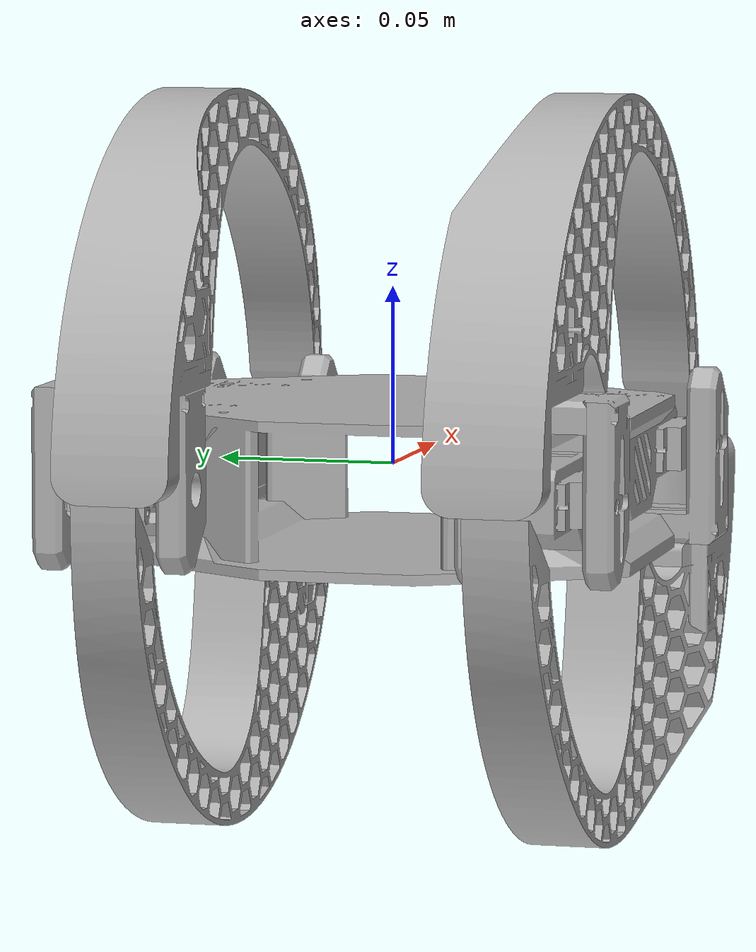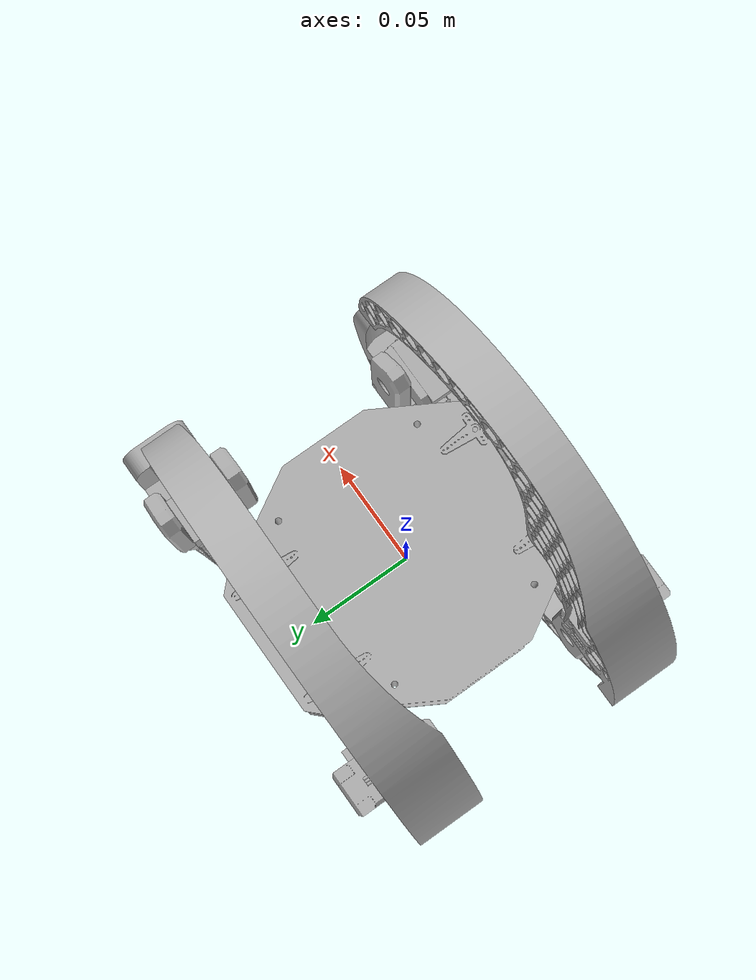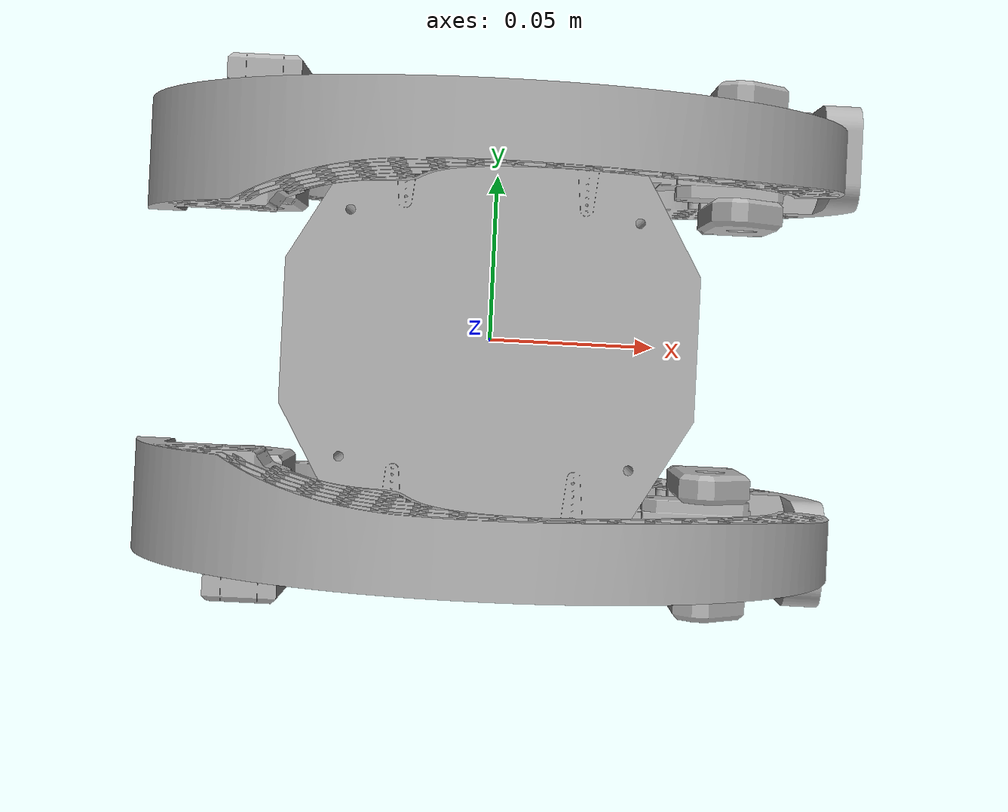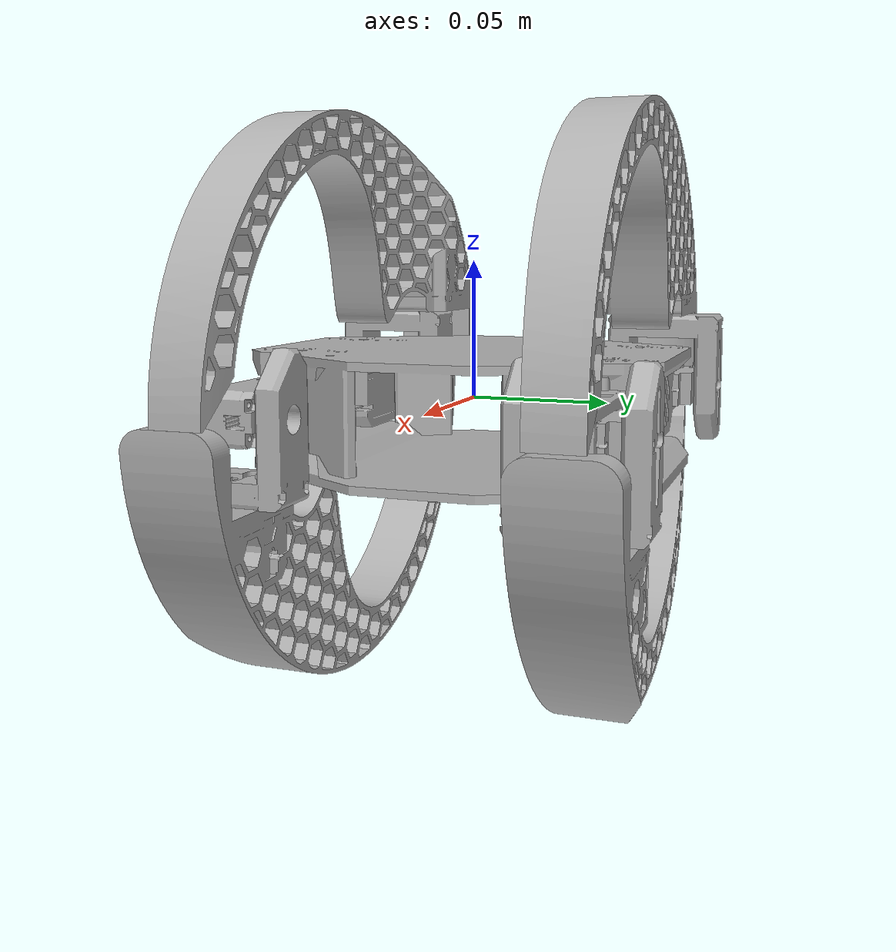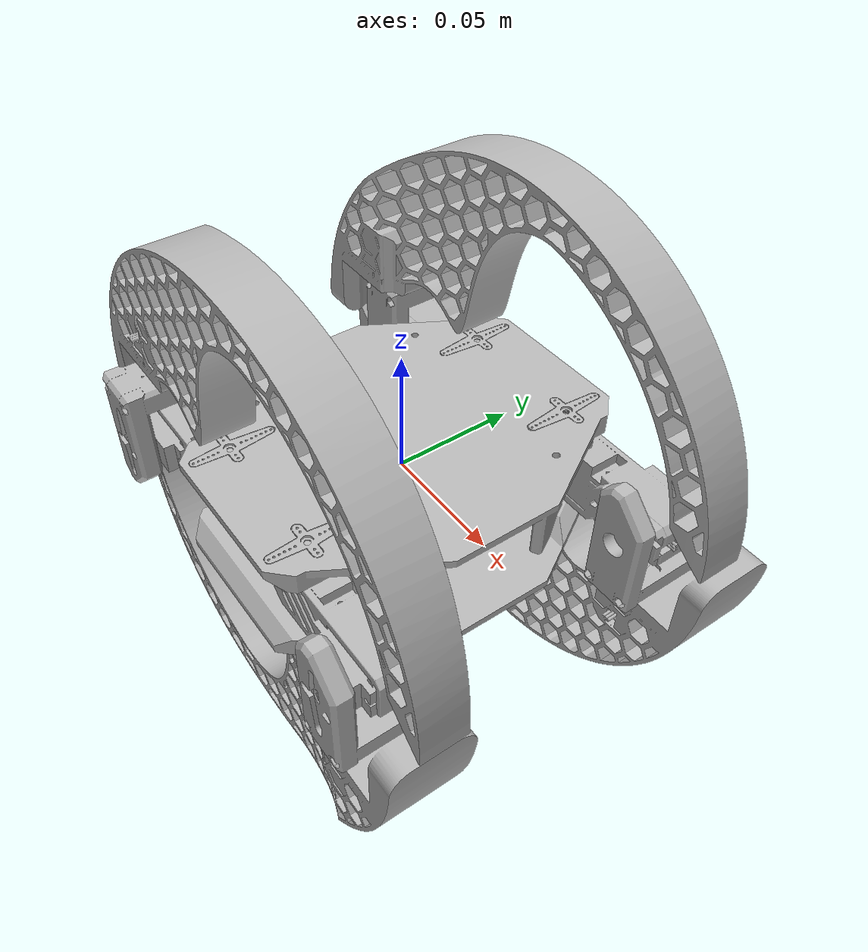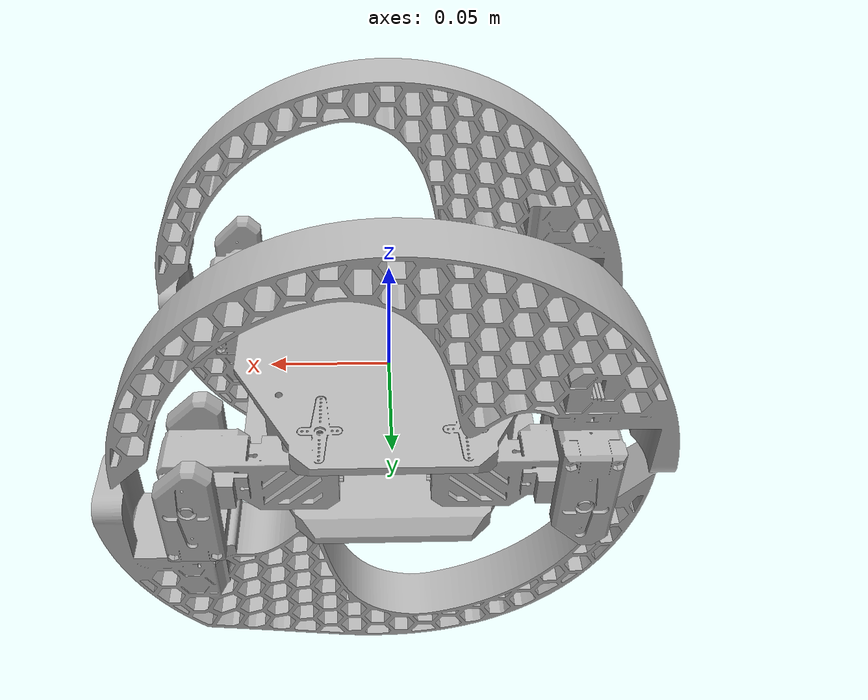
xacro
<?xml version="1.0" ?>
<robot name="Gelinder" xmlns:xacro="http://www.ros.org/wiki/xacro">

<xacro:include filename="$(find gelinder_description)/urdf/materials.xacro" />
<xacro:include filename="$(find gelinder_description)/urdf/gelinder.gazebo.xacro" />
<xacro:include filename="$(find gelinder_description)/urdf/gelinder.ros2_control.xacro" />
<link name="base_link">
  <inertial>
    <origin xyz="-5.8056117089972774e-08 -5.060738295930749e-05 -0.003944451224627542" rpy="0 0 0"/>
    <mass value="0.17457355739398212"/>
    <inertia ixx="0.000415" iyy="0.000219" izz="0.000517" ixy="-0.0" iyz="0.0" ixz="-0.0"/>
  </inertial>
  <visual>
    <origin xyz="0 0 0" rpy="0 0 0"/>
    <geometry>
      <mesh filename="package://gelinder_description/meshes/base_link.stl" scale="0.001 0.001 0.001"/>
    </geometry>
    <material name="silver"/>
  </visual>
  <collision>
    <origin xyz="0 0 0" rpy="0 0 0"/>
    <geometry>
      <mesh filename="package://gelinder_description/meshes/base_link.stl" scale="0.001 0.001 0.001"/>
    </geometry>
  </collision>
</link>

<link name="arm_a_0_1">
  <inertial>
    <origin xyz="0.027907137204750257 0.0016748467673032424 -0.01082115037983439" rpy="0 0 0"/>
    <mass value="0.028202657282117616"/>
    <inertia ixx="2e-06" iyy="1.1e-05" izz="1.1e-05" ixy="-0.0" iyz="-0.0" ixz="-1e-06"/>
  </inertial>
  <visual>
    <origin xyz="-0.026975 -0.056276 -0.009495" rpy="0 0 0"/>
    <geometry>
      <mesh filename="package://gelinder_description/meshes/arm_a_0_1.stl" scale="0.001 0.001 0.001"/>
    </geometry>
    <material name="silver"/>
  </visual>
  <collision>
    <origin xyz="-0.026975 -0.056276 -0.009495" rpy="0 0 0"/>
    <geometry>
      <mesh filename="package://gelinder_description/meshes/arm_a_0_1.stl" scale="0.001 0.001 0.001"/>
    </geometry>
  </collision>
</link>

<link name="arm_a_1_1">
  <inertial>
    <origin xyz="-0.00033056783673883483 -0.01398985852679175 -0.0083316720524025" rpy="0 0 0"/>
    <mass value="0.020020156112587915"/>
    <inertia ixx="1e-05" iyy="5e-06" izz="6e-06" ixy="0.0" iyz="0.0" ixz="0.0"/>
  </inertial>
  <visual>
    <origin xyz="-0.075575 -0.072126 0.000217" rpy="0 0 0"/>
    <geometry>
      <mesh filename="package://gelinder_description/meshes/arm_a_1_1.stl" scale="0.001 0.001 0.001"/>
    </geometry>
    <material name="silver"/>
  </visual>
  <collision>
    <origin xyz="-0.075575 -0.072126 0.000217" rpy="0 0 0"/>
    <geometry>
      <mesh filename="package://gelinder_description/meshes/arm_a_1_1.stl" scale="0.001 0.001 0.001"/>
    </geometry>
  </collision>
</link>

<link name="arm_a_2_1">
  <inertial>
    <origin xyz="-0.03967347310504917 0.002358988559746311 -0.02556627009331447" rpy="0 0 0"/>
    <mass value="0.09778545701466328"/>
    <inertia ixx="7.3e-05" iyy="0.000426" izz="0.000366" ixy="-1.4e-05" iyz="-4e-06" ixz="-4.2e-05"/>
  </inertial>
  <visual>
    <origin xyz="-0.075586 -0.056229 0.028419" rpy="0 0 0"/>
    <geometry>
      <mesh filename="package://gelinder_description/meshes/arm_a_2_1.stl" scale="0.001 0.001 0.001"/>
    </geometry>
    <material name="silver"/>
  </visual>
  <collision>
    <origin xyz="-0.075586 -0.056229 0.028419" rpy="0 0 0"/>
    <geometry>
      <mesh filename="package://gelinder_description/meshes/arm_a_2_1.stl" scale="0.001 0.001 0.001"/>
    </geometry>
  </collision>
</link>

<link name="arm_b_0_1">
  <inertial>
    <origin xyz="0.022107137204750278 -0.001674846767303291 -0.01082115037983438" rpy="0 0 0"/>
    <mass value="0.028202657282117634"/>
    <inertia ixx="2e-06" iyy="1.1e-05" izz="1.1e-05" ixy="0.0" iyz="0.0" ixz="-1e-06"/>
  </inertial>
  <visual>
    <origin xyz="-0.026975 0.056276 -0.009495" rpy="0 0 0"/>
    <geometry>
      <mesh filename="package://gelinder_description/meshes/arm_b_0_1.stl" scale="0.001 0.001 0.001"/>
    </geometry>
    <material name="silver"/>
  </visual>
  <collision>
    <origin xyz="-0.026975 0.056276 -0.009495" rpy="0 0 0"/>
    <geometry>
      <mesh filename="package://gelinder_description/meshes/arm_b_0_1.stl" scale="0.001 0.001 0.001"/>
    </geometry>
  </collision>
</link>

<link name="arm_b_1_1">
  <inertial>
    <origin xyz="-0.00033056783673887646 0.01398985852679184 -0.008331672052402476" rpy="0 0 0"/>
    <mass value="0.02002015611258792"/>
    <inertia ixx="1e-05" iyy="5e-06" izz="6e-06" ixy="-0.0" iyz="-0.0" ixz="0.0"/>
  </inertial>
  <visual>
    <origin xyz="-0.069775 0.072126 0.000217" rpy="0 0 0"/>
    <geometry>
      <mesh filename="package://gelinder_description/meshes/arm_b_1_1.stl" scale="0.001 0.001 0.001"/>
    </geometry>
    <material name="silver"/>
  </visual>
  <collision>
    <origin xyz="-0.069775 0.072126 0.000217" rpy="0 0 0"/>
    <geometry>
      <mesh filename="package://gelinder_description/meshes/arm_b_1_1.stl" scale="0.001 0.001 0.001"/>
    </geometry>
  </collision>
</link>

<link name="arm_b_2_1">
  <inertial>
    <origin xyz="-0.03967347310504907 -0.0023589885597462695 -0.02556627009331456" rpy="0 0 0"/>
    <mass value="0.09778545701466337"/>
    <inertia ixx="7.3e-05" iyy="0.000426" izz="0.000366" ixy="1.4e-05" iyz="4e-06" ixz="-4.2e-05"/>
  </inertial>
  <visual>
    <origin xyz="-0.069786 0.056229 0.028419" rpy="0 0 0"/>
    <geometry>
      <mesh filename="package://gelinder_description/meshes/arm_b_2_1.stl" scale="0.001 0.001 0.001"/>
    </geometry>
    <material name="silver"/>
  </visual>
  <collision>
    <origin xyz="-0.069786 0.056229 0.028419" rpy="0 0 0"/>
    <geometry>
      <mesh filename="package://gelinder_description/meshes/arm_b_2_1.stl" scale="0.001 0.001 0.001"/>
    </geometry>
  </collision>
</link>

<link name="arm_c_0_1">
  <inertial>
    <origin xyz="-0.02210713720475313 0.001674846767301584 -0.010821150379829184" rpy="0 0 0"/>
    <mass value="0.02820265728211762"/>
    <inertia ixx="2e-06" iyy="1.1e-05" izz="1.1e-05" ixy="0.0" iyz="-0.0" ixz="1e-06"/>
  </inertial>
  <visual>
    <origin xyz="0.026975 -0.056276 -0.009495" rpy="0 0 0"/>
    <geometry>
      <mesh filename="package://gelinder_description/meshes/arm_c_0_1.stl" scale="0.001 0.001 0.001"/>
    </geometry>
    <material name="silver"/>
  </visual>
  <collision>
    <origin xyz="0.026975 -0.056276 -0.009495" rpy="0 0 0"/>
    <geometry>
      <mesh filename="package://gelinder_description/meshes/arm_c_0_1.stl" scale="0.001 0.001 0.001"/>
    </geometry>
  </collision>
</link>

<link name="arm_c_1_1">
  <inertial>
    <origin xyz="-0.00033112661078475714 -0.013989858526793367 0.008332144234452691" rpy="0 0 0"/>
    <mass value="0.020020156112587926"/>
    <inertia ixx="1e-05" iyy="5e-06" izz="6e-06" ixy="0.0" iyz="-0.0" ixz="-0.0"/>
  </inertial>
  <visual>
    <origin xyz="0.069775 -0.072126 0.000217" rpy="0 0 0"/>
    <geometry>
      <mesh filename="package://gelinder_description/meshes/arm_c_1_1.stl" scale="0.001 0.001 0.001"/>
    </geometry>
    <material name="silver"/>
  </visual>
  <collision>
    <origin xyz="0.069775 -0.072126 0.000217" rpy="0 0 0"/>
    <geometry>
      <mesh filename="package://gelinder_description/meshes/arm_c_1_1.stl" scale="0.001 0.001 0.001"/>
    </geometry>
  </collision>
</link>

<link name="arm_c_2_1">
  <inertial>
    <origin xyz="0.03967384480007545 -0.002359763454847383 0.02556674227536231" rpy="0 0 0"/>
    <mass value="0.09778545701466348"/>
    <inertia ixx="7.3e-05" iyy="0.000426" izz="0.000366" ixy="-1.4e-05" iyz="-4e-06" ixz="-4.2e-05"/>
  </inertial>
  <visual>
    <origin xyz="0.069765 -0.056229 -0.027985" rpy="0 0 0"/>
    <geometry>
      <mesh filename="package://gelinder_description/meshes/arm_c_2_1.stl" scale="0.001 0.001 0.001"/>
    </geometry>
    <material name="silver"/>
  </visual>
  <collision>
    <origin xyz="0.069765 -0.056229 -0.027985" rpy="0 0 0"/>
    <geometry>
      <mesh filename="package://gelinder_description/meshes/arm_c_2_1.stl" scale="0.001 0.001 0.001"/>
    </geometry>
  </collision>
</link>

<link name="arm_d_0_1">
  <inertial>
    <origin xyz="-0.022107137204753123 -0.0016748467673016257 -0.010821150379829177" rpy="0 0 0"/>
    <mass value="0.02820265728211762"/>
    <inertia ixx="2e-06" iyy="1.1e-05" izz="1.1e-05" ixy="-0.0" iyz="0.0" ixz="1e-06"/>
  </inertial>
  <visual>
    <origin xyz="0.026975 0.056276 -0.009495" rpy="0 0 0"/>
    <geometry>
      <mesh filename="package://gelinder_description/meshes/arm_d_0_1.stl" scale="0.001 0.001 0.001"/>
    </geometry>
    <material name="silver"/>
  </visual>
  <collision>
    <origin xyz="0.026975 0.056276 -0.009495" rpy="0 0 0"/>
    <geometry>
      <mesh filename="package://gelinder_description/meshes/arm_d_0_1.stl" scale="0.001 0.001 0.001"/>
    </geometry>
  </collision>
</link>

<link name="arm_d_1_1">
  <inertial>
    <origin xyz="-0.00033112661078463224 0.013989858526793526 0.00833214423445272" rpy="0 0 0"/>
    <mass value="0.020020156112587926"/>
    <inertia ixx="1e-05" iyy="5e-06" izz="6e-06" ixy="-0.0" iyz="0.0" ixz="-0.0"/>
  </inertial>
  <visual>
    <origin xyz="0.069775 0.072126 0.000217" rpy="0 0 0"/>
    <geometry>
      <mesh filename="package://gelinder_description/meshes/arm_d_1_1.stl" scale="0.001 0.001 0.001"/>
    </geometry>
    <material name="silver"/>
  </visual>
  <collision>
    <origin xyz="0.069775 0.072126 0.000217" rpy="0 0 0"/>
    <geometry>
      <mesh filename="package://gelinder_description/meshes/arm_d_1_1.stl" scale="0.001 0.001 0.001"/>
    </geometry>
  </collision>
</link>

<link name="arm_d_2_1">
  <inertial>
    <origin xyz="0.03967384480007531 0.002359763454847577 0.025566742275362198" rpy="0 0 0"/>
    <mass value="0.09778545701466333"/>
    <inertia ixx="7.3e-05" iyy="0.000426" izz="0.000366" ixy="1.4e-05" iyz="4e-06" ixz="-4.2e-05"/>
  </inertial>
  <visual>
    <origin xyz="0.069765 0.056229 -0.027985" rpy="0 0 0"/>
    <geometry>
      <mesh filename="package://gelinder_description/meshes/arm_d_2_1.stl" scale="0.001 0.001 0.001"/>
    </geometry>
    <material name="silver"/>
  </visual>
  <collision>
    <origin xyz="0.069765 0.056229 -0.027985" rpy="0 0 0"/>
    <geometry>
      <mesh filename="package://gelinder_description/meshes/arm_d_2_1.stl" scale="0.001 0.001 0.001"/>
    </geometry>
  </collision>
</link>

<joint name="A0" type="continuous">
  <origin xyz="0.026975 0.056276 0.009495" rpy="0 0 0"/>
  <parent link="base_link"/>
  <child link="arm_a_0_1"/>
  <axis xyz="-0.0 -0.0 -1.0"/>
</joint>

<joint name="A1" type="continuous">
  <origin xyz="0.0486 0.01585 -0.009712" rpy="0 0 0"/>
  <parent link="arm_a_0_1"/>
  <child link="arm_a_1_1"/>
  <axis xyz="0.0 1.0 -0.0"/>
</joint>

<joint name="A2" type="continuous">
  <origin xyz="1.1e-05 -0.015897 -0.028202" rpy="0 0 0"/>
  <parent link="arm_a_1_1"/>
  <child link="arm_a_2_1"/>
  <axis xyz="-0.0 0.0 1.0"/>
</joint>

<joint name="B0" type="continuous">
  <origin xyz="0.026975 -0.056276 0.009495" rpy="0 0 0"/>
  <parent link="base_link"/>
  <child link="arm_b_0_1"/>
  <axis xyz="0.0 -0.0 1.0"/>
</joint>

<joint name="B1" type="continuous">
  <origin xyz="0.0428 -0.01585 -0.009712" rpy="0 0 0"/>
  <parent link="arm_b_0_1"/>
  <child link="arm_b_1_1"/>
  <axis xyz="0.0 1.0 0.0"/>
</joint>

<joint name="B2" type="continuous">
  <origin xyz="1.1e-05 0.015897 -0.028202" rpy="0 0 0"/>
  <parent link="arm_b_1_1"/>
  <child link="arm_b_2_1"/>
  <axis xyz="0.0 0.0 -1.0"/>
</joint>

<joint name="C0" type="continuous">
  <origin xyz="-0.026975 0.056276 0.009495" rpy="0 0 0"/>
  <parent link="base_link"/>
  <child link="arm_c_0_1"/>
  <axis xyz="0.0 0.0 1.0"/>
</joint>

<joint name="C1" type="continuous">
  <origin xyz="-0.0428 0.01585 -0.009712" rpy="0 0 0"/>
  <parent link="arm_c_0_1"/>
  <child link="arm_c_1_1"/>
  <axis xyz="0.0 -1.0 0.0"/>
</joint>

<joint name="C2" type="continuous">
  <origin xyz="1e-05 -0.015897 0.028202" rpy="0 0 0"/>
  <parent link="arm_c_1_1"/>
  <child link="arm_c_2_1"/>
  <axis xyz="0.0 0.0 1.0"/>
</joint>

<joint name="D0" type="continuous">
  <origin xyz="-0.026975 -0.056276 0.009495" rpy="0 0 0"/>
  <parent link="base_link"/>
  <child link="arm_d_0_1"/>
  <axis xyz="-0.0 0.0 -1.0"/>
</joint>

<joint name="D1" type="continuous">
  <origin xyz="-0.0428 -0.01585 -0.009712" rpy="0 0 0"/>
  <parent link="arm_d_0_1"/>
  <child link="arm_d_1_1"/>
  <axis xyz="0.0 -1.0 -0.0"/>
</joint>

<joint name="D2" type="continuous">
  <origin xyz="1e-05 0.015897 0.028202" rpy="0 0 0"/>
  <parent link="arm_d_1_1"/>
  <child link="arm_d_2_1"/>
  <axis xyz="-0.0 0.0 -1.0"/>
</joint>

</robot>

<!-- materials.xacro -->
<robot xmlns:xacro="http://www.ros.org/wiki/xacro">

  <material name="silver">
    <color rgba="0.700 0.700 0.700 1.000"/>
  </material>

</robot>
